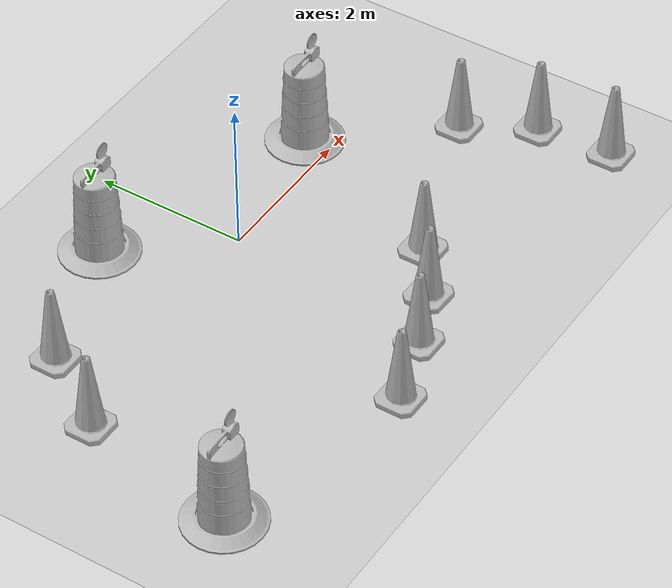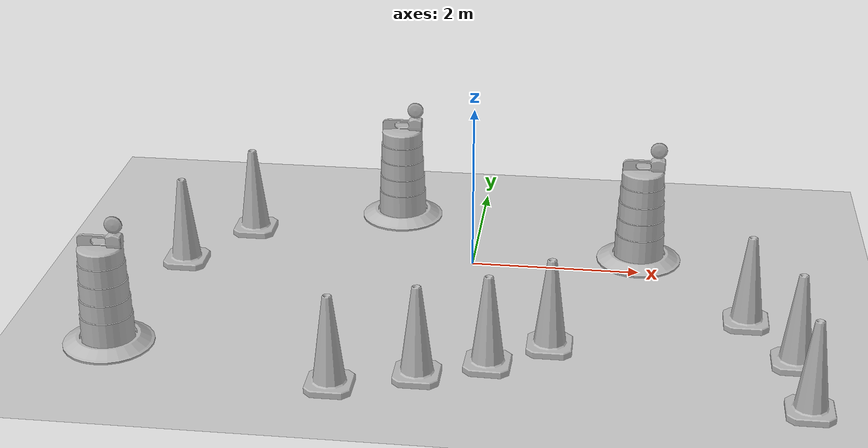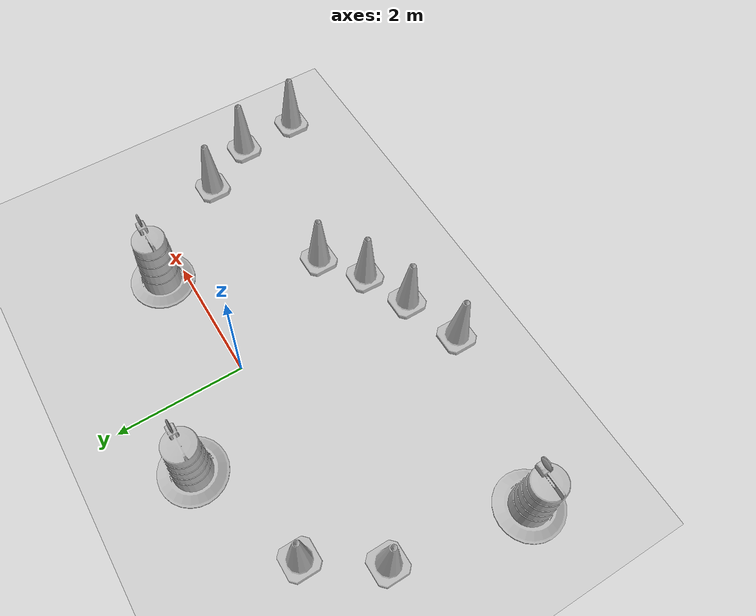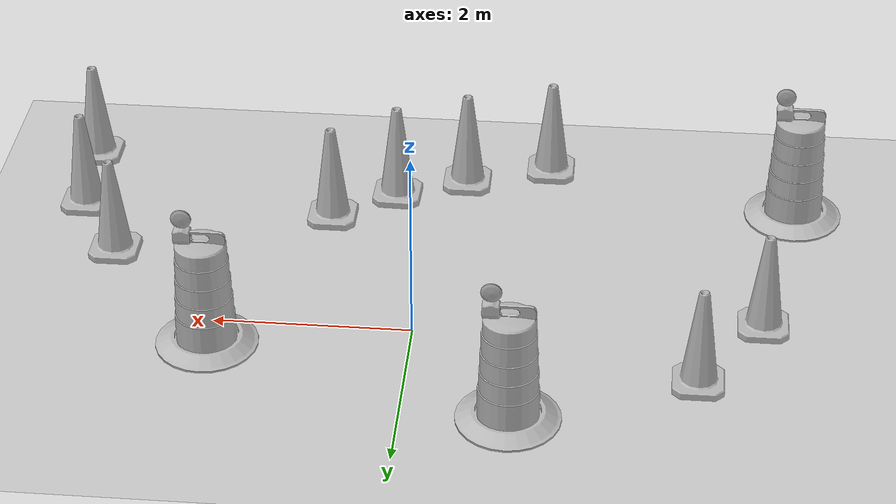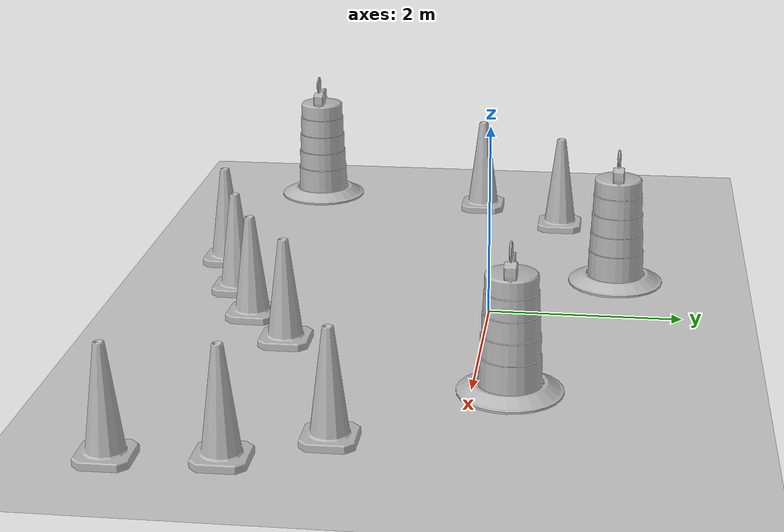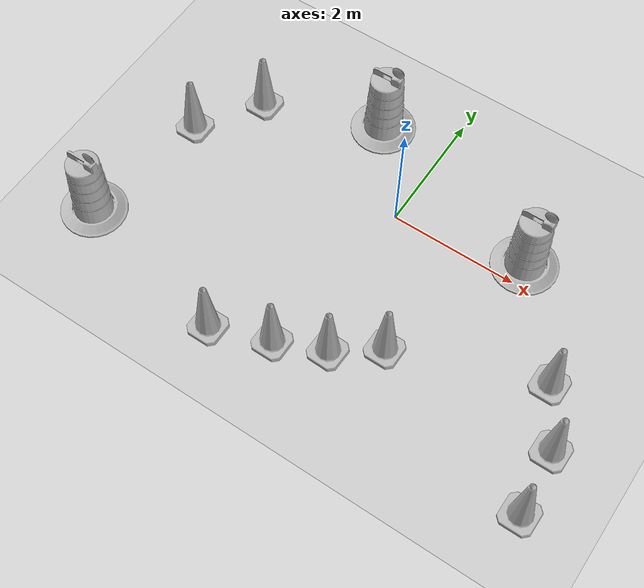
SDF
<sdf version="1.7">
 <world name="default">
  <light name="sun" type="directional">
   <pose>0 0 10 0 -0 0</pose>
   <diffuse>0.8 0.8 0.8 1</diffuse>
   <specular>0.2 0.2 0.2 1</specular>
   <attenuation>
    <range>1000</range>
    <constant>0.9</constant>
    <linear>0.01</linear>
    <quadratic>0.001</quadratic>
   </attenuation>
   <direction>-0.5 0.1 -0.9</direction>
   <spot><inner_angle>0</inner_angle><outer_angle>0</outer_angle><falloff>0</falloff></spot>
  </light>
  <model name="ground_plane">
   <static>1</static>
   <link name="link">
    <collision name="collision">
     <geometry><plane><normal>0 0 1</normal><size>100 100</size></plane></geometry>
     <surface>
      <contact><collide_bitmask>65535</collide_bitmask></contact>
      <friction><ode><mu>100</mu><mu2>50</mu2></ode></friction>
     </surface>
    </collision>
    <visual name="visual">
     <cast_shadows>0</cast_shadows>
     <geometry><plane><normal>0 0 1</normal><size>100 100</size></plane></geometry>
     <material>
      <script><uri>file://media/materials/scripts/gazebo.material</uri><name>Gazebo/Grey</name></script>
     </material>
    </visual>
   </link>
  </model>
  <gravity>0 0 -9.8</gravity>
  <magnetic_field>6e-06 2.3e-05 -4.2e-05</magnetic_field>
  <atmosphere type="adiabatic"/>
  <physics type="ode">
   <max_step_size>0.001</max_step_size>
   <real_time_factor>1</real_time_factor>
   <real_time_update_rate>1000</real_time_update_rate>
  </physics>
  <scene><ambient>0.4 0.4 0.4 1</ambient><background>0.7 0.7 0.7 1</background><shadows>1</shadows></scene>
  <audio><device>default</device></audio>
  <spherical_coordinates>
   <surface_model>EARTH_WGS84</surface_model>
   <latitude_deg>0</latitude_deg>
   <longitude_deg>0</longitude_deg>
   <elevation>0</elevation>
   <heading_deg>0</heading_deg>
  </spherical_coordinates>
  <model name="Construction Barrel">
   <link name="link">
    <inertial>
     <pose>0 0 0.4 0 -0 0</pose>
     <mass>500</mass>
     <inertia><ixx>51.2096</ixx><iyy>51.2096</iyy><izz>25</izz><ixy>0</ixy><ixz>0</ixz><iyz>0</iyz></inertia>
    </inertial>
    <collision name="collision">
     <geometry><mesh><uri>model://construction_barrel/meshes/construction_barrel.dae</uri></mesh></geometry>
    </collision>
    <visual name="visual">
     <geometry><mesh><uri>model://construction_barrel/meshes/construction_barrel.dae</uri></mesh></geometry>
    </visual>
   </link>
   <pose>1.99684 0.360016 1e-06 3e-06 2e-06 0.001153</pose>
  </model>
  <model name="Construction Barrel_clone_1">
   <link name="link">
    <inertial>
     <pose>0 0 0.4 0 -0 0</pose>
     <mass>500</mass>
     <inertia><ixx>51.2096</ixx><iyy>51.2096</iyy><izz>25</izz><ixy>0</ixy><ixz>0</ixz><iyz>0</iyz></inertia>
    </inertial>
    <collision name="collision">
     <geometry><mesh><uri>model://construction_barrel/meshes/construction_barrel.dae</uri></mesh></geometry>
    </collision>
    <visual name="visual">
     <geometry><mesh><uri>model://construction_barrel/meshes/construction_barrel.dae</uri></mesh></geometry>
    </visual>
   </link>
   <pose>-1.04371 1.30046 -0 0 -0 -3.4e-05</pose>
  </model>
  <model name="Construction Cone">
   <link name="link">
    <collision name="collision">
     <geometry>
      <mesh><scale>10 10 10</scale><uri>model://construction_cone/meshes/construction_cone.dae</uri></mesh>
     </geometry>
    </collision>
    <visual name="visual">
     <geometry>
      <mesh><scale>10 10 10</scale><uri>model://construction_cone/meshes/construction_cone.dae</uri></mesh>
     </geometry>
    </visual>
    <inertial>
     <inertia><ixx>1</ixx><ixy>0</ixy><ixz>0</ixz><iyy>1</iyy><iyz>0</iyz><izz>1</izz></inertia>
     <mass>1</mass>
    </inertial>
   </link>
   <pose>-1.21667 -3.0593 -8e-06 1e-06 -0 0</pose>
  </model>
  <model name="Construction Cone_clone">
   <link name="link">
    <collision name="collision">
     <geometry>
      <mesh><scale>10 10 10</scale><uri>model://construction_cone/meshes/construction_cone.dae</uri></mesh>
     </geometry>
    </collision>
    <visual name="visual">
     <geometry>
      <mesh><scale>10 10 10</scale><uri>model://construction_cone/meshes/construction_cone.dae</uri></mesh>
     </geometry>
    </visual>
    <inertial>
     <inertia><ixx>1</ixx><ixy>0</ixy><ixz>0</ixz><iyy>1</iyy><iyz>0</iyz><izz>1</izz></inertia>
     <mass>1</mass>
    </inertial>
   </link>
   <pose>-0.324549 -2.74844 -0 0 -0 0</pose>
  </model>
  <model name="Construction Cone_clone_0">
   <link name="link">
    <collision name="collision">
     <geometry>
      <mesh><scale>10 10 10</scale><uri>model://construction_cone/meshes/construction_cone.dae</uri></mesh>
     </geometry>
    </collision>
    <visual name="visual">
     <geometry>
      <mesh><scale>10 10 10</scale><uri>model://construction_cone/meshes/construction_cone.dae</uri></mesh>
     </geometry>
    </visual>
    <inertial>
     <inertia><ixx>1</ixx><ixy>0</ixy><ixz>0</ixz><iyy>1</iyy><iyz>0</iyz><izz>1</izz></inertia>
     <mass>1</mass>
    </inertial>
   </link>
   <pose>0.404116 -2.43066 -5e-06 4e-06 -1e-06 -0.026977</pose>
  </model>
  <model name="Construction Cone_clone_1">
   <link name="link">
    <collision name="collision">
     <geometry>
      <mesh><scale>10 10 10</scale><uri>model://construction_cone/meshes/construction_cone.dae</uri></mesh>
     </geometry>
    </collision>
    <visual name="visual">
     <geometry>
      <mesh><scale>10 10 10</scale><uri>model://construction_cone/meshes/construction_cone.dae</uri></mesh>
     </geometry>
    </visual>
    <inertial>
     <inertia><ixx>1</ixx><ixy>0</ixy><ixz>0</ixz><iyy>1</iyy><iyz>0</iyz><izz>1</izz></inertia>
     <mass>1</mass>
    </inertial>
   </link>
   <pose>3.22286 -1.13801 -8e-06 0 1e-06 0</pose>
  </model>
  <model name="Construction Barrel_clone_1_clone">
   <link name="link">
    <inertial>
     <pose>0 0 0.4 0 -0 0</pose>
     <mass>500</mass>
     <inertia><ixx>51.2096</ixx><iyy>51.2096</iyy><izz>25</izz><ixy>0</ixy><ixz>0</ixz><iyz>0</iyz></inertia>
    </inertial>
    <collision name="collision">
     <geometry><mesh><uri>model://construction_barrel/meshes/construction_barrel.dae</uri></mesh></geometry>
    </collision>
    <visual name="visual">
     <geometry><mesh><uri>model://construction_barrel/meshes/construction_barrel.dae</uri></mesh></geometry>
    </visual>
   </link>
   <pose>-3.82107 -2.41699 1e-06 3e-06 2e-06 -3.5e-05</pose>
  </model>
  <model name="Construction Cone_clone_1_clone">
   <link name="link">
    <collision name="collision">
     <geometry>
      <mesh><scale>10 10 10</scale><uri>model://construction_cone/meshes/construction_cone.dae</uri></mesh>
     </geometry>
    </collision>
    <visual name="visual">
     <geometry>
      <mesh><scale>10 10 10</scale><uri>model://construction_cone/meshes/construction_cone.dae</uri></mesh>
     </geometry>
    </visual>
    <inertial>
     <inertia><ixx>1</ixx><ixy>0</ixy><ixz>0</ixz><iyy>1</iyy><iyz>0</iyz><izz>1</izz></inertia>
     <mass>1</mass>
    </inertial>
   </link>
   <pose>1.04651 -1.95699 -0 -0 -0 -0</pose>
  </model>
  <model name="Construction Cone_clone_1_clone_0">
   <link name="link">
    <collision name="collision">
     <geometry>
      <mesh><scale>10 10 10</scale><uri>model://construction_cone/meshes/construction_cone.dae</uri></mesh>
     </geometry>
    </collision>
    <visual name="visual">
     <geometry>
      <mesh><scale>10 10 10</scale><uri>model://construction_cone/meshes/construction_cone.dae</uri></mesh>
     </geometry>
    </visual>
    <inertial>
     <inertia><ixx>1</ixx><ixy>0</ixy><ixz>0</ixz><iyy>1</iyy><iyz>0</iyz><izz>1</izz></inertia>
     <mass>1</mass>
    </inertial>
   </link>
   <pose>3.7068 -1.99381 -0 0 -0 0</pose>
  </model>
  <model name="Construction Cone_clone_1_clone_1">
   <link name="link">
    <collision name="collision">
     <geometry>
      <mesh><scale>10 10 10</scale><uri>model://construction_cone/meshes/construction_cone.dae</uri></mesh>
     </geometry>
    </collision>
    <visual name="visual">
     <geometry>
      <mesh><scale>10 10 10</scale><uri>model://construction_cone/meshes/construction_cone.dae</uri></mesh>
     </geometry>
    </visual>
    <inertial>
     <inertia><ixx>1</ixx><ixy>0</ixy><ixz>0</ixz><iyy>1</iyy><iyz>0</iyz><izz>1</izz></inertia>
     <mass>1</mass>
    </inertial>
   </link>
   <pose>3.78772 -2.99307 -9e-06 -1e-06 -0 -0</pose>
  </model>
  <model name="Construction Cone_clone_1_clone_2">
   <link name="link">
    <collision name="collision">
     <geometry>
      <mesh><scale>10 10 10</scale><uri>model://construction_cone/meshes/construction_cone.dae</uri></mesh>
     </geometry>
    </collision>
    <visual name="visual">
     <geometry>
      <mesh><scale>10 10 10</scale><uri>model://construction_cone/meshes/construction_cone.dae</uri></mesh>
     </geometry>
    </visual>
    <inertial>
     <inertia><ixx>1</ixx><ixy>0</ixy><ixz>0</ixz><iyy>1</iyy><iyz>0</iyz><izz>1</izz></inertia>
     <mass>1</mass>
    </inertial>
   </link>
   <pose>-2.83261 0.618863 -0 0 -0 0</pose>
  </model>
  <model name="Construction Cone_clone_1_clone_3">
   <link name="link">
    <collision name="collision">
     <geometry>
      <mesh><scale>10 10 10</scale><uri>model://construction_cone/meshes/construction_cone.dae</uri></mesh>
     </geometry>
    </collision>
    <visual name="visual">
     <geometry>
      <mesh><scale>10 10 10</scale><uri>model://construction_cone/meshes/construction_cone.dae</uri></mesh>
     </geometry>
    </visual>
    <inertial>
     <inertia><ixx>1</ixx><ixy>0</ixy><ixz>0</ixz><iyy>1</iyy><iyz>0</iyz><izz>1</izz></inertia>
     <mass>1</mass>
    </inertial>
   </link>
   <pose>-3.47388 -0.354526 -0 0 -1e-06 0</pose>
  </model>
 </world>
</sdf>
